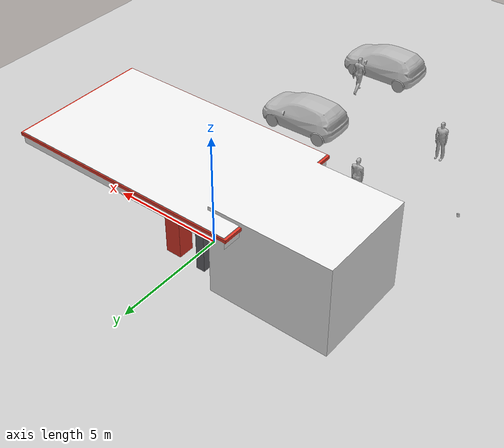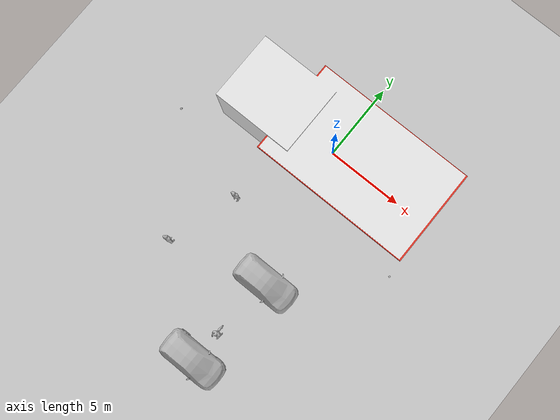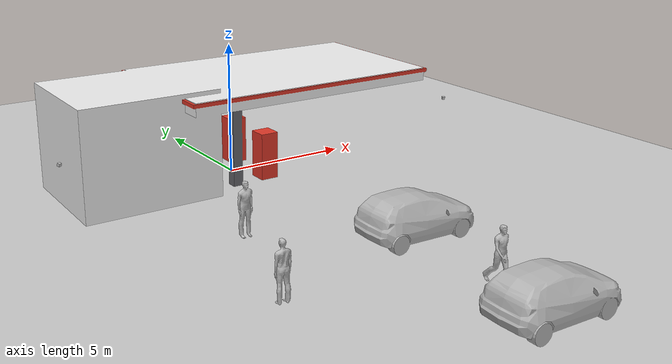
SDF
<sdf version="1.7">
 <world name="default">
  <light name="sun" type="directional">
   <pose>0 0 10 0 -0 0</pose>
   <diffuse>0.8 0.8 0.8 1</diffuse>
   <specular>0.2 0.2 0.2 1</specular>
   <attenuation>
    <range>1000</range>
    <constant>0.9</constant>
    <linear>0.01</linear>
    <quadratic>0.001</quadratic>
   </attenuation>
   <direction>-0.5 0.1 -0.9</direction>
   <spot><inner_angle>0</inner_angle><outer_angle>0</outer_angle><falloff>0</falloff></spot>
  </light>
  <model name="ground_plane">
   <static>1</static>
   <link name="link">
    <collision name="collision">
     <geometry><plane><normal>0 0 1</normal><size>100 100</size></plane></geometry>
     <surface><friction><ode><mu>100</mu><mu2>50</mu2></ode></friction></surface>
    </collision>
    <visual name="visual">
     <cast_shadows>0</cast_shadows>
     <geometry><plane><normal>0 0 1</normal><size>100 100</size></plane></geometry>
     <material>
      <script><uri>file://media/materials/scripts/gazebo.material</uri><name>Gazebo/Grey</name></script>
     </material>
    </visual>
   </link>
  </model>
  <gravity>0 0 -9.8</gravity>
  <magnetic_field>6e-06 2.3e-05 -4.2e-05</magnetic_field>
  <atmosphere type="adiabatic"/>
  <physics type="ode">
   <max_step_size>0.001</max_step_size>
   <real_time_factor>1</real_time_factor>
   <real_time_update_rate>1000</real_time_update_rate>
  </physics>
  <scene><ambient>0.4 0.4 0.4 1</ambient><background>0.7 0.7 0.7 1</background><shadows>1</shadows></scene>
  <audio><device>default</device></audio>
  <spherical_coordinates>
   <surface_model>EARTH_WGS84</surface_model>
   <latitude_deg>0</latitude_deg>
   <longitude_deg>0</longitude_deg>
   <elevation>0</elevation>
   <heading_deg>0</heading_deg>
  </spherical_coordinates>
  <model name="Gas Station">
   <static>1</static>
   <link name="link">
    <collision name="collision">
     <geometry><mesh><uri>model://gas_station/meshes/gas_station.dae</uri></mesh></geometry>
    </collision>
    <visual name="visual">
     <geometry><mesh><uri>model://gas_station/meshes/gas_station.dae</uri></mesh></geometry>
     <material>
      <script>
       <uri>model://gas_station/materials/scripts</uri>
       <uri>model://gas_station/materials/textures</uri>
       <name>GasStation/Diffuse</name>
      </script>
      <shader type="normal_map_tangent_space"><normal_map>GasStation_Normal.png</normal_map></shader>
     </material>
    </visual>
   </link>
   <pose>-0.404784 -0.057275 0 0 -0 0</pose>
  </model>
  <model name="hatchback_blue">
   <static>1</static>
   <link name="link">
    <collision name="collision">
     <pose>0 0 0 0 -0 1.5708</pose>
     <geometry>
      <mesh><scale>0.0254 0.0254 0.0254</scale><uri>model://hatchback_blue/meshes/hatchback.obj</uri></mesh>
     </geometry>
    </collision>
    <visual name="visual">
     <pose>0 0 0 0 -0 1.5708</pose>
     <geometry>
      <mesh><scale>0.0254 0.0254 0.0254</scale><uri>model://hatchback_blue/meshes/hatchback.obj</uri></mesh>
     </geometry>
    </visual>
   </link>
   <pose>1.06949 -14.7871 0 0 -0 0</pose>
  </model>
  <model name="hatchback">
   <static>1</static>
   <link name="link">
    <collision name="collision">
     <pose>0 0 0 0 -0 1.5708</pose>
     <geometry>
      <mesh><scale>0.0254 0.0254 0.0254</scale><uri>model://hatchback/meshes/hatchback.obj</uri></mesh>
     </geometry>
    </collision>
    <visual name="visual">
     <pose>0 0 0 0 -0 1.5708</pose>
     <geometry>
      <mesh><scale>0.0254 0.0254 0.0254</scale><uri>model://hatchback/meshes/hatchback.obj</uri></mesh>
     </geometry>
    </visual>
   </link>
   <pose>1.56222 -8.70301 0 0 -0 0</pose>
  </model>
  <model name="person_walking">
   <link name="link">
    <inertial>
     <pose>0 0 0.95 0 -0 0</pose>
     <mass>80</mass>
     <inertia><ixx>27.82</ixx><ixy>0</ixy><ixz>0</ixz><iyy>24.88</iyy><iyz>0</iyz><izz>4.57</izz></inertia>
    </inertial>
    <collision name="bottom">
     <pose>0 0 0.01 0 -0 0</pose>
     <geometry><box><size>0.35 0.75 0.02</size></box></geometry>
    </collision>
    <collision name="person">
     <pose>0 0 -0.02 0 -0 0</pose>
     <geometry><mesh><uri>model://person_walking/meshes/walking.dae</uri></mesh></geometry>
    </collision>
    <visual name="visual">
     <pose>0 0 -0.02 0 -0 0</pose>
     <geometry><mesh><uri>model://person_walking/meshes/walking.dae</uri></mesh></geometry>
    </visual>
   </link>
   <pose>1.60742 -12.6725 0 0 -0 0</pose>
  </model>
  <model name="person_standing">
   <link name="link">
    <inertial>
     <pose>0 -0.1 0.95 0 -0 0</pose>
     <mass>80</mass>
     <inertia><ixx>24.88</ixx><ixy>0</ixy><ixz>0</ixz><iyy>25.73</iyy><iyz>0</iyz><izz>2.48</izz></inertia>
    </inertial>
    <pose>0 0 0 0 -0 3.11907</pose>
    <visual name="visual">
     <pose>0 0 0.02 0.04 -0 0</pose>
     <geometry><mesh><uri>model://person_standing/meshes/standing.dae</uri></mesh></geometry>
     <material><shader type="pixel"/></material>
    </visual>
    <collision name="person">
     <pose>0 0 0.02 0.04 -0 0</pose>
     <geometry>
      <mesh><uri>/home/yjh/.gazebo/models/person_standing/meshes/standing.dae</uri><scale>1 1 1</scale></mesh>
     </geometry>
     <surface>
      <friction>
       <ode><mu>1</mu><mu2>1</mu2><fdir1>0 0 0</fdir1><slip1>0</slip1><slip2>0</slip2></ode>
       <torsional>
        <coefficient>1</coefficient>
        <patch_radius>0</patch_radius>
        <surface_radius>0</surface_radius>
        <use_patch_radius>1</use_patch_radius>
        <ode><slip>0</slip></ode>
       </torsional>
      </friction>
      <bounce><restitution_coefficient>0</restitution_coefficient><threshold>1e+06</threshold></bounce>
      <contact>
       <collide_without_contact>0</collide_without_contact>
       <collide_without_contact_bitmask>1</collide_without_contact_bitmask>
       <collide_bitmask>1</collide_bitmask>
       <ode>
        <soft_cfm>0</soft_cfm>
        <soft_erp>0.2</soft_erp>
        <kp>1e+13</kp>
        <kd>1</kd>
        <max_vel>0.01</max_vel>
        <min_depth>0</min_depth>
       </ode>
       <bullet>
        <split_impulse>1</split_impulse>
        <split_impulse_penetration_threshold>-0.01</split_impulse_penetration_threshold>
        <soft_cfm>0</soft_cfm>
        <soft_erp>0.2</soft_erp>
        <kp>1e+13</kp>
        <kd>1</kd>
       </bullet>
      </contact>
     </surface>
    </collision>
    <collision name="bottom">
     <pose>0 -0.1 0.01 0 -0 0</pose>
     <geometry><box><size>0.5 0.35 0.02</size></box></geometry>
     <surface>
      <friction>
       <ode><mu>1</mu><mu2>1</mu2><fdir1>0 0 0</fdir1><slip1>0</slip1><slip2>0</slip2></ode>
       <torsional>
        <coefficient>1</coefficient>
        <patch_radius>0</patch_radius>
        <surface_radius>0</surface_radius>
        <use_patch_radius>1</use_patch_radius>
        <ode><slip>0</slip></ode>
       </torsional>
      </friction>
      <bounce><restitution_coefficient>0</restitution_coefficient><threshold>1e+06</threshold></bounce>
      <contact>
       <collide_without_contact>0</collide_without_contact>
       <collide_without_contact_bitmask>1</collide_without_contact_bitmask>
       <collide_bitmask>1</collide_bitmask>
       <ode>
        <soft_cfm>0</soft_cfm>
        <soft_erp>0.2</soft_erp>
        <kp>1e+13</kp>
        <kd>1</kd>
        <max_vel>0.01</max_vel>
        <min_depth>0</min_depth>
       </ode>
       <bullet>
        <split_impulse>1</split_impulse>
        <split_impulse_penetration_threshold>-0.01</split_impulse_penetration_threshold>
        <soft_cfm>0</soft_cfm>
        <soft_erp>0.2</soft_erp>
        <kp>1e+13</kp>
        <kd>1</kd>
       </bullet>
      </contact>
     </surface>
    </collision>
   </link>
   <static>0</static>
   <pose>-4.18509 -10.3834 0 0 -0 0</pose>
  </model>
  <model name="person_standing_0">
   <link name="link">
    <inertial>
     <pose>0 -0.1 0.95 0 -0 0</pose>
     <mass>80</mass>
     <inertia><ixx>24.88</ixx><ixy>0</ixy><ixz>0</ixz><iyy>25.73</iyy><iyz>0</iyz><izz>2.48</izz></inertia>
    </inertial>
    <collision name="bottom">
     <pose>0 -0.1 0.01 0 -0 0</pose>
     <geometry><box><size>0.5 0.35 0.02</size></box></geometry>
    </collision>
    <collision name="person">
     <pose>0 0 0.02 0.04 -0 0</pose>
     <geometry><mesh><uri>model://person_standing/meshes/standing.dae</uri></mesh></geometry>
    </collision>
    <visual name="visual">
     <pose>0 0 0.02 0.04 -0 0</pose>
     <geometry><mesh><uri>model://person_standing/meshes/standing.dae</uri></mesh></geometry>
    </visual>
   </link>
   <pose>-2.75864 -5.75378 0 0 -0 0</pose>
  </model>
  <model name="camera_2">
   <static>true</static>
   <pose>7.20346 -4.03363 2.81456 -0.018395 0.13282 -2.04248</pose>
   <link name="link">
    <inertial>
     <mass>0.1</mass>
     <inertia>
      <ixx>0.000166667</ixx>
      <iyy>0.000166667</iyy>
      <izz>0.000166667</izz>
      <ixy>0</ixy>
      <ixz>0</ixz>
      <iyz>0</iyz>
     </inertia>
    </inertial>
    <collision name="collision"><geometry><box><size>0.1 0.1 0.1</size></box></geometry></collision>
    <visual name="visual"><geometry><box><size>0.1 0.1 0.1</size></box></geometry></visual>
    <sensor name="camera" type="camera">
     <camera>
      <horizontal_fov>1.047</horizontal_fov>
      <image><width>640</width><height>480</height></image>
      <clip><near>0.1</near><far>100</far></clip>
     </camera>
     <always_on>1</always_on>
     <update_rate>30</update_rate>
     <visualize>0</visualize>
     <plugin name="camera_controller_2" filename="libgazebo_ros_camera.so">
      <ros>
       <namespace>/cctv_2</namespace>
       <remappings>
        <remapping from="image_topic" to="/cctv_2/image_raw"/>
        <remapping from="camera_info_topic" to="/cctv_2/camera_info"/>
       </remappings>
      </ros>
      <camera_name>cctv_camera_2</camera_name>
      <frame_name>cctv_camera_2_frame</frame_name>
      <node_name>camera_node_w2</node_name>
     </plugin>
    </sensor>
   </link>
  </model>
  <model name="camera_1">
   <static>true</static>
   <pose>-8.09335 -4.00807 2.92903 0.029498 0.291812 -1.06685</pose>
   <link name="link">
    <inertial>
     <mass>0.1</mass>
     <inertia>
      <ixx>0.000166667</ixx>
      <iyy>0.000166667</iyy>
      <izz>0.000166667</izz>
      <ixy>0</ixy>
      <ixz>0</ixz>
      <iyz>0</iyz>
     </inertia>
    </inertial>
    <collision name="collision"><geometry><box><size>0.1 0.1 0.1</size></box></geometry></collision>
    <visual name="visual"><geometry><box><size>0.1 0.1 0.1</size></box></geometry></visual>
    <sensor name="camera" type="camera">
     <camera>
      <horizontal_fov>1.047</horizontal_fov>
      <image><width>640</width><height>480</height></image>
      <clip><near>0.1</near><far>100</far></clip>
     </camera>
     <always_on>1</always_on>
     <update_rate>30</update_rate>
     <visualize>0</visualize>
     <plugin name="camera_controller_1" filename="libgazebo_ros_camera.so">
      <ros>
       <namespace>/cctv_1</namespace>
       <remappings>
        <remapping from="image_topic" to="/cctv_1/image_raw"/>
        <remapping from="camera_info_topic" to="/cctv_1/camera_info"/>
       </remappings>
      </ros>
      <camera_name>cctv_camera_1</camera_name>
      <frame_name>cctv_camera_1_frame</frame_name>
      <node_name>camera_node_w1</node_name>
     </plugin>
    </sensor>
   </link>
  </model>
 </world>
</sdf>
